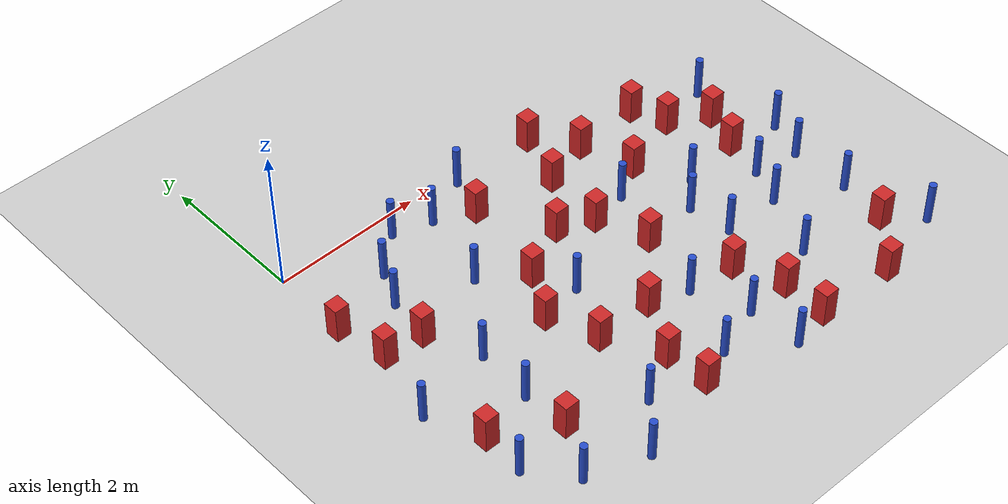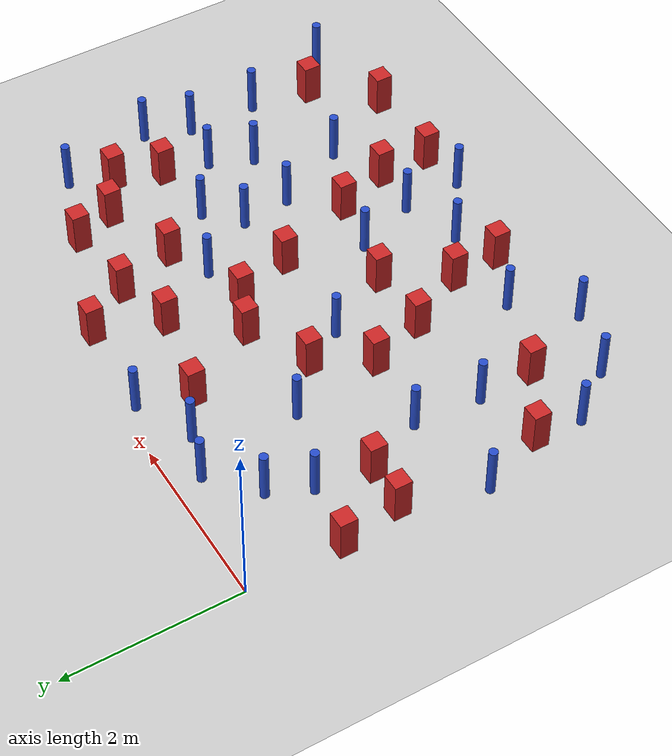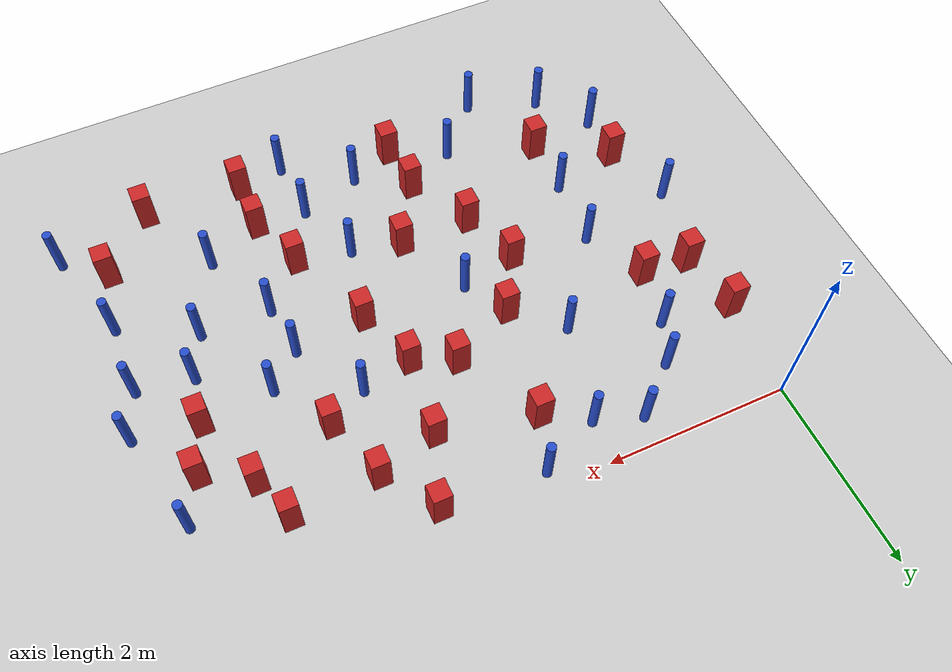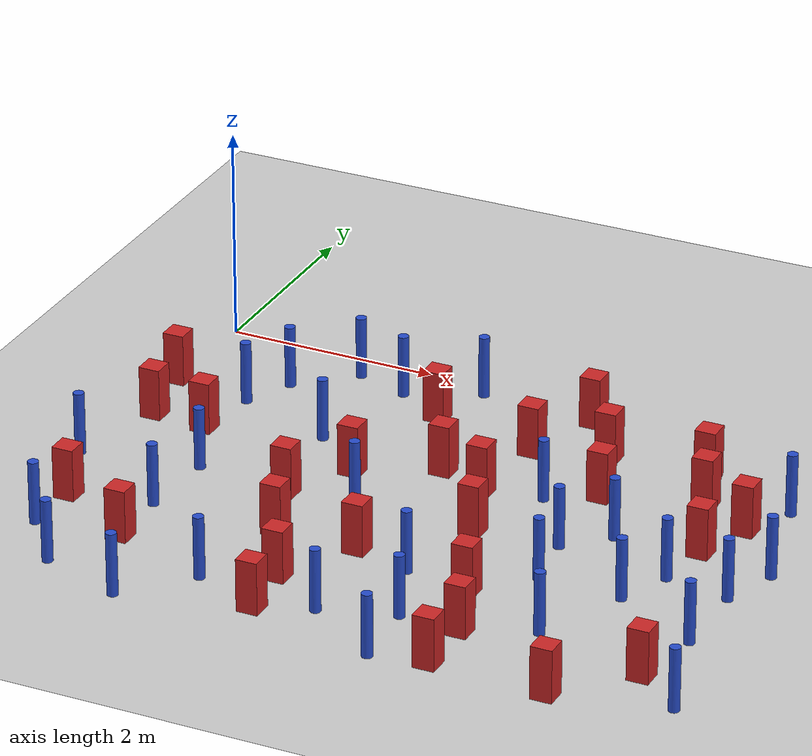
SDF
<sdf version="1.6">
 <world name="default">
  <model name="ground_plane">
   <static>1</static>
   <link name="link">
    <collision name="collision">
     <geometry><plane><normal>0 0 1</normal><size>100 100</size></plane></geometry>
     <surface><friction><ode><mu>100</mu><mu2>50</mu2></ode></friction></surface>
    </collision>
    <visual name="visual">
     <cast_shadows>0</cast_shadows>
     <geometry><plane><normal>0 0 1</normal><size>100 100</size></plane></geometry>
     <material>
      <ambient>1.0 1.0 1.0 1.0</ambient>
      <diffuse>0.8 0.8 0.8 1.0</diffuse>
      <specular>0.01 0.01 0.01 1.000000</specular>
     </material>
    </visual>
   </link>
  </model>
  <model name="square_post_obstacle3">
   <static>true</static>
   <pose>4.00599388592 -3.51829156355 1.91545236811e-07 -7.35059704564e-06 1.12565212e-07 2.39332434364e-05</pose>
   <link name="link">
    <pose>0 0 0.25 0 -0 0</pose>
    <inertial>
     <mass>100</mass>
     <inertia>
      <ixx>0.166667</ixx>
      <ixy>0</ixy>
      <ixz>0</ixz>
      <iyy>0.166667</iyy>
      <iyz>0</iyz>
      <izz>0.166667</izz>
     </inertia>
    </inertial>
    <collision name="collision"><geometry><box><size>.2 .2 .5</size></box></geometry></collision>
    <visual name="visual">
     <geometry><box><size>.2 .2 .5</size></box></geometry>
     <material>
      <script><name>Gazebo/Red</name><uri>file://media/materials/scripts/gazebo.material</uri></script>
     </material>
    </visual>
   </link>
  </model>
  <model name="pole_obstacle7">
   <static>true</static>
   <pose>2.44351836764 -2.47740883795 7.38925637345e-09 -8.47170692798e-08 1.24976764939e-08 -1.74513093025e-07</pose>
   <link name="link">
    <pose>0 0 0.3 0 -0 0</pose>
    <inertial>
     <mass>1</mass>
     <inertia><ixx>0.145833</ixx><ixy>0</ixy><ixz>0</ixz><iyy>0.145833</iyy><iyz>0</iyz><izz>0.125</izz></inertia>
    </inertial>
    <collision name="collision">
     <geometry><cylinder><radius>0.05</radius><length>.6</length></cylinder></geometry>
    </collision>
    <visual name="visual">
     <geometry><cylinder><radius>0.05</radius><length>.6</length></cylinder></geometry>
     <material>
      <script><name>Gazebo/Blue</name><uri>file://media/materials/scripts/gazebo.material</uri></script>
     </material>
    </visual>
   </link>
  </model>
  <model name="pole_obstacle11">
   <static>true</static>
   <pose>0.533257884497 -4.56651260387 7.38925637345e-09 -8.47170692799e-08 1.24976765073e-08 -1.74513093015e-07</pose>
   <link name="link">
    <pose>0 0 0.3 0 -0 0</pose>
    <inertial>
     <mass>1</mass>
     <inertia><ixx>0.145833</ixx><ixy>0</ixy><ixz>0</ixz><iyy>0.145833</iyy><iyz>0</iyz><izz>0.125</izz></inertia>
    </inertial>
    <collision name="collision">
     <geometry><cylinder><radius>0.05</radius><length>.6</length></cylinder></geometry>
    </collision>
    <visual name="visual">
     <geometry><cylinder><radius>0.05</radius><length>.6</length></cylinder></geometry>
     <material>
      <script><name>Gazebo/Blue</name><uri>file://media/materials/scripts/gazebo.material</uri></script>
     </material>
    </visual>
   </link>
  </model>
  <model name="pole_obstacle22">
   <static>true</static>
   <pose>4.85561236583 -3.89319429137 7.38925637345e-09 -8.47170692798e-08 1.24976764937e-08 -1.74513093023e-07</pose>
   <link name="link">
    <pose>0 0 0.3 0 -0 0</pose>
    <inertial>
     <mass>1</mass>
     <inertia><ixx>0.145833</ixx><ixy>0</ixy><ixz>0</ixz><iyy>0.145833</iyy><iyz>0</iyz><izz>0.125</izz></inertia>
    </inertial>
    <collision name="collision">
     <geometry><cylinder><radius>0.05</radius><length>.6</length></cylinder></geometry>
    </collision>
    <visual name="visual">
     <geometry><cylinder><radius>0.05</radius><length>.6</length></cylinder></geometry>
     <material>
      <script><name>Gazebo/Blue</name><uri>file://media/materials/scripts/gazebo.material</uri></script>
     </material>
    </visual>
   </link>
  </model>
  <model name="pole_obstacle23">
   <static>true</static>
   <pose>1.31565596581 -4.84449528913 7.38925637345e-09 -8.47170692799e-08 1.24976765033e-08 -1.74513093018e-07</pose>
   <link name="link">
    <pose>0 0 0.3 0 -0 0</pose>
    <inertial>
     <mass>1</mass>
     <inertia><ixx>0.145833</ixx><ixy>0</ixy><ixz>0</ixz><iyy>0.145833</iyy><iyz>0</iyz><izz>0.125</izz></inertia>
    </inertial>
    <collision name="collision">
     <geometry><cylinder><radius>0.05</radius><length>.6</length></cylinder></geometry>
    </collision>
    <visual name="visual">
     <geometry><cylinder><radius>0.05</radius><length>.6</length></cylinder></geometry>
     <material>
      <script><name>Gazebo/Blue</name><uri>file://media/materials/scripts/gazebo.material</uri></script>
     </material>
    </visual>
   </link>
  </model>
  <model name="square_post_obstacle29">
   <static>true</static>
   <pose>5.73695816343 -1.51770821123 1.91545236811e-07 -7.35059704564e-06 1.12565212e-07 2.39332434364e-05</pose>
   <link name="link">
    <pose>0 0 0.25 0 -0 0</pose>
    <inertial>
     <mass>100</mass>
     <inertia>
      <ixx>0.166667</ixx>
      <ixy>0</ixy>
      <ixz>0</ixz>
      <iyy>0.166667</iyy>
      <iyz>0</iyz>
      <izz>0.166667</izz>
     </inertia>
    </inertial>
    <collision name="collision"><geometry><box><size>.2 .2 .5</size></box></geometry></collision>
    <visual name="visual">
     <geometry><box><size>.2 .2 .5</size></box></geometry>
     <material>
      <script><name>Gazebo/Red</name><uri>file://media/materials/scripts/gazebo.material</uri></script>
     </material>
    </visual>
   </link>
  </model>
  <model name="pole_obstacle35">
   <static>true</static>
   <pose>6.05486879121 -2.6827402552 7.38925637345e-09 -8.47170692798e-08 1.24976764937e-08 -1.74513093023e-07</pose>
   <link name="link">
    <pose>0 0 0.3 0 -0 0</pose>
    <inertial>
     <mass>1</mass>
     <inertia><ixx>0.145833</ixx><ixy>0</ixy><ixz>0</ixz><iyy>0.145833</iyy><iyz>0</iyz><izz>0.125</izz></inertia>
    </inertial>
    <collision name="collision">
     <geometry><cylinder><radius>0.05</radius><length>.6</length></cylinder></geometry>
    </collision>
    <visual name="visual">
     <geometry><cylinder><radius>0.05</radius><length>.6</length></cylinder></geometry>
     <material>
      <script><name>Gazebo/Blue</name><uri>file://media/materials/scripts/gazebo.material</uri></script>
     </material>
    </visual>
   </link>
  </model>
  <model name="pole_obstacle44">
   <static>true</static>
   <pose>4.46348793654 -3.04497540785 7.38925637345e-09 -8.47170692798e-08 1.24976764937e-08 -1.74513093023e-07</pose>
   <link name="link">
    <pose>0 0 0.3 0 -0 0</pose>
    <inertial>
     <mass>1</mass>
     <inertia><ixx>0.145833</ixx><ixy>0</ixy><ixz>0</ixz><iyy>0.145833</iyy><iyz>0</iyz><izz>0.125</izz></inertia>
    </inertial>
    <collision name="collision">
     <geometry><cylinder><radius>0.05</radius><length>.6</length></cylinder></geometry>
    </collision>
    <visual name="visual">
     <geometry><cylinder><radius>0.05</radius><length>.6</length></cylinder></geometry>
     <material>
      <script><name>Gazebo/Blue</name><uri>file://media/materials/scripts/gazebo.material</uri></script>
     </material>
    </visual>
   </link>
  </model>
  <model name="pole_obstacle47">
   <static>true</static>
   <pose>5.23842744811 -3.06139203375 7.38925637345e-09 -8.47170692798e-08 1.24976764937e-08 -1.74513093023e-07</pose>
   <link name="link">
    <pose>0 0 0.3 0 -0 0</pose>
    <inertial>
     <mass>1</mass>
     <inertia><ixx>0.145833</ixx><ixy>0</ixy><ixz>0</ixz><iyy>0.145833</iyy><iyz>0</iyz><izz>0.125</izz></inertia>
    </inertial>
    <collision name="collision">
     <geometry><cylinder><radius>0.05</radius><length>.6</length></cylinder></geometry>
    </collision>
    <visual name="visual">
     <geometry><cylinder><radius>0.05</radius><length>.6</length></cylinder></geometry>
     <material>
      <script><name>Gazebo/Blue</name><uri>file://media/materials/scripts/gazebo.material</uri></script>
     </material>
    </visual>
   </link>
  </model>
  <model name="square_post_obstacle39">
   <static>true</static>
   <pose>5.06121230279 -0.745210494062 1.91545236811e-07 -7.35059704564e-06 1.12565212e-07 2.39332434364e-05</pose>
   <link name="link">
    <pose>0 0 0.25 0 -0 0</pose>
    <inertial>
     <mass>100</mass>
     <inertia>
      <ixx>0.166667</ixx>
      <ixy>0</ixy>
      <ixz>0</ixz>
      <iyy>0.166667</iyy>
      <iyz>0</iyz>
      <izz>0.166667</izz>
     </inertia>
    </inertial>
    <collision name="collision"><geometry><box><size>.2 .2 .5</size></box></geometry></collision>
    <visual name="visual">
     <geometry><box><size>.2 .2 .5</size></box></geometry>
     <material>
      <script><name>Gazebo/Red</name><uri>file://media/materials/scripts/gazebo.material</uri></script>
     </material>
    </visual>
   </link>
  </model>
  <model name="pole_obstacle51">
   <static>true</static>
   <pose>1.44427974664 -0.302717819269 7.38925637345e-09 -8.47170692799e-08 1.24976765065e-08 -1.74513093017e-07</pose>
   <link name="link">
    <pose>0 0 0.3 0 -0 0</pose>
    <inertial>
     <mass>1</mass>
     <inertia><ixx>0.145833</ixx><ixy>0</ixy><ixz>0</ixz><iyy>0.145833</iyy><iyz>0</iyz><izz>0.125</izz></inertia>
    </inertial>
    <collision name="collision">
     <geometry><cylinder><radius>0.05</radius><length>.6</length></cylinder></geometry>
    </collision>
    <visual name="visual">
     <geometry><cylinder><radius>0.05</radius><length>.6</length></cylinder></geometry>
     <material>
      <script><name>Gazebo/Blue</name><uri>file://media/materials/scripts/gazebo.material</uri></script>
     </material>
    </visual>
   </link>
  </model>
  <model name="pole_obstacle53">
   <static>true</static>
   <pose>3.91578654774 -1.73858913442 7.38925637345e-09 -8.471706928e-08 1.24976765152e-08 -1.74513093012e-07</pose>
   <link name="link">
    <pose>0 0 0.3 0 -0 0</pose>
    <inertial>
     <mass>1</mass>
     <inertia><ixx>0.145833</ixx><ixy>0</ixy><ixz>0</ixz><iyy>0.145833</iyy><iyz>0</iyz><izz>0.125</izz></inertia>
    </inertial>
    <collision name="collision">
     <geometry><cylinder><radius>0.05</radius><length>.6</length></cylinder></geometry>
    </collision>
    <visual name="visual">
     <geometry><cylinder><radius>0.05</radius><length>.6</length></cylinder></geometry>
     <material>
      <script><name>Gazebo/Blue</name><uri>file://media/materials/scripts/gazebo.material</uri></script>
     </material>
    </visual>
   </link>
  </model>
  <model name="pole_obstacle55">
   <static>true</static>
   <pose>2.99132134271 -4.35292238982 7.38925637345e-09 -8.47170692798e-08 1.24976765033e-08 -1.74513093019e-07</pose>
   <link name="link">
    <pose>0 0 0.3 0 -0 0</pose>
    <inertial>
     <mass>1</mass>
     <inertia><ixx>0.145833</ixx><ixy>0</ixy><ixz>0</ixz><iyy>0.145833</iyy><iyz>0</iyz><izz>0.125</izz></inertia>
    </inertial>
    <collision name="collision">
     <geometry><cylinder><radius>0.05</radius><length>.6</length></cylinder></geometry>
    </collision>
    <visual name="visual">
     <geometry><cylinder><radius>0.05</radius><length>.6</length></cylinder></geometry>
     <material>
      <script><name>Gazebo/Blue</name><uri>file://media/materials/scripts/gazebo.material</uri></script>
     </material>
    </visual>
   </link>
  </model>
  <model name="square_post_obstacle42">
   <static>true</static>
   <pose>2.44247866948 -3.97164580899 1.91545236811e-07 -7.35059704564e-06 1.12565212e-07 2.39332434364e-05</pose>
   <link name="link">
    <pose>0 0 0.25 0 -0 0</pose>
    <inertial>
     <mass>100</mass>
     <inertia>
      <ixx>0.166667</ixx>
      <ixy>0</ixy>
      <ixz>0</ixz>
      <iyy>0.166667</iyy>
      <iyz>0</iyz>
      <izz>0.166667</izz>
     </inertia>
    </inertial>
    <collision name="collision"><geometry><box><size>.2 .2 .5</size></box></geometry></collision>
    <visual name="visual">
     <geometry><box><size>.2 .2 .5</size></box></geometry>
     <material>
      <script><name>Gazebo/Red</name><uri>file://media/materials/scripts/gazebo.material</uri></script>
     </material>
    </visual>
   </link>
  </model>
  <model name="square_post_obstacle46">
   <static>true</static>
   <pose>2.06076503231 -3.25968005404 1.91545236811e-07 -7.35059704564e-06 1.12565212e-07 2.39332434364e-05</pose>
   <link name="link">
    <pose>0 0 0.25 0 -0 0</pose>
    <inertial>
     <mass>100</mass>
     <inertia>
      <ixx>0.166667</ixx>
      <ixy>0</ixy>
      <ixz>0</ixz>
      <iyy>0.166667</iyy>
      <iyz>0</iyz>
      <izz>0.166667</izz>
     </inertia>
    </inertial>
    <collision name="collision"><geometry><box><size>.2 .2 .5</size></box></geometry></collision>
    <visual name="visual">
     <geometry><box><size>.2 .2 .5</size></box></geometry>
     <material>
      <script><name>Gazebo/Red</name><uri>file://media/materials/scripts/gazebo.material</uri></script>
     </material>
    </visual>
   </link>
  </model>
  <model name="pole_obstacle70">
   <static>true</static>
   <pose>2.61512561731 -0.169626297726 7.38925637345e-09 -8.471706928e-08 1.24976765208e-08 -1.7451309301e-07</pose>
   <link name="link">
    <pose>0 0 0.3 0 -0 0</pose>
    <inertial>
     <mass>1</mass>
     <inertia><ixx>0.145833</ixx><ixy>0</ixy><ixz>0</ixz><iyy>0.145833</iyy><iyz>0</iyz><izz>0.125</izz></inertia>
    </inertial>
    <collision name="collision">
     <geometry><cylinder><radius>0.05</radius><length>.6</length></cylinder></geometry>
    </collision>
    <visual name="visual">
     <geometry><cylinder><radius>0.05</radius><length>.6</length></cylinder></geometry>
     <material>
      <script><name>Gazebo/Blue</name><uri>file://media/materials/scripts/gazebo.material</uri></script>
     </material>
    </visual>
   </link>
  </model>
  <model name="square_post_obstacle65">
   <static>true</static>
   <pose>4.12832801389 -0.794457500878 1.91545236811e-07 -7.35059704564e-06 1.12565212e-07 2.39332434364e-05</pose>
   <link name="link">
    <pose>0 0 0.25 0 -0 0</pose>
    <inertial>
     <mass>100</mass>
     <inertia>
      <ixx>0.166667</ixx>
      <ixy>0</ixy>
      <ixz>0</ixz>
      <iyy>0.166667</iyy>
      <iyz>0</iyz>
      <izz>0.166667</izz>
     </inertia>
    </inertial>
    <collision name="collision"><geometry><box><size>.2 .2 .5</size></box></geometry></collision>
    <visual name="visual">
     <geometry><box><size>.2 .2 .5</size></box></geometry>
     <material>
      <script><name>Gazebo/Red</name><uri>file://media/materials/scripts/gazebo.material</uri></script>
     </material>
    </visual>
   </link>
  </model>
  <model name="square_post_obstacle67">
   <static>true</static>
   <pose>-0.0289529675434 -1.08019975364 1.91545236811e-07 -7.35059704564e-06 1.12565212e-07 2.39332434364e-05</pose>
   <link name="link">
    <pose>0 0 0.25 0 -0 0</pose>
    <inertial>
     <mass>100</mass>
     <inertia>
      <ixx>0.166667</ixx>
      <ixy>0</ixy>
      <ixz>0</ixz>
      <iyy>0.166667</iyy>
      <iyz>0</iyz>
      <izz>0.166667</izz>
     </inertia>
    </inertial>
    <collision name="collision"><geometry><box><size>.2 .2 .5</size></box></geometry></collision>
    <visual name="visual">
     <geometry><box><size>.2 .2 .5</size></box></geometry>
     <material>
      <script><name>Gazebo/Red</name><uri>file://media/materials/scripts/gazebo.material</uri></script>
     </material>
    </visual>
   </link>
  </model>
  <model name="square_post_obstacle68">
   <static>true</static>
   <pose>2.84794088507 -3.26135374026 1.91545236811e-07 -7.35059704564e-06 1.12565212e-07 2.39332434364e-05</pose>
   <link name="link">
    <pose>0 0 0.25 0 -0 0</pose>
    <inertial>
     <mass>100</mass>
     <inertia>
      <ixx>0.166667</ixx>
      <ixy>0</ixy>
      <ixz>0</ixz>
      <iyy>0.166667</iyy>
      <iyz>0</iyz>
      <izz>0.166667</izz>
     </inertia>
    </inertial>
    <collision name="collision"><geometry><box><size>.2 .2 .5</size></box></geometry></collision>
    <visual name="visual">
     <geometry><box><size>.2 .2 .5</size></box></geometry>
     <material>
      <script><name>Gazebo/Red</name><uri>file://media/materials/scripts/gazebo.material</uri></script>
     </material>
    </visual>
   </link>
  </model>
  <model name="pole_obstacle80">
   <static>true</static>
   <pose>1.94999545837 -0.470431281667 7.38925637345e-09 -8.47170692799e-08 1.24976765044e-08 -1.74513093018e-07</pose>
   <link name="link">
    <pose>0 0 0.3 0 -0 0</pose>
    <inertial>
     <mass>1</mass>
     <inertia><ixx>0.145833</ixx><ixy>0</ixy><ixz>0</ixz><iyy>0.145833</iyy><iyz>0</iyz><izz>0.125</izz></inertia>
    </inertial>
    <collision name="collision">
     <geometry><cylinder><radius>0.05</radius><length>.6</length></cylinder></geometry>
    </collision>
    <visual name="visual">
     <geometry><cylinder><radius>0.05</radius><length>.6</length></cylinder></geometry>
     <material>
      <script><name>Gazebo/Blue</name><uri>file://media/materials/scripts/gazebo.material</uri></script>
     </material>
    </visual>
   </link>
  </model>
  <model name="square_post_obstacle69">
   <static>true</static>
   <pose>0.0938976587752 -1.7775641572 1.91545236811e-07 -7.35059704564e-06 1.12565212e-07 2.39332434364e-05</pose>
   <link name="link">
    <pose>0 0 0.25 0 -0 0</pose>
    <inertial>
     <mass>100</mass>
     <inertia>
      <ixx>0.166667</ixx>
      <ixy>0</ixy>
      <ixz>0</ixz>
      <iyy>0.166667</iyy>
      <iyz>0</iyz>
      <izz>0.166667</izz>
     </inertia>
    </inertial>
    <collision name="collision"><geometry><box><size>.2 .2 .5</size></box></geometry></collision>
    <visual name="visual">
     <geometry><box><size>.2 .2 .5</size></box></geometry>
     <material>
      <script><name>Gazebo/Red</name><uri>file://media/materials/scripts/gazebo.material</uri></script>
     </material>
    </visual>
   </link>
  </model>
  <model name="square_post_obstacle70">
   <static>true</static>
   <pose>3.3650989649 -1.84867344312 1.91545236811e-07 -7.35059704564e-06 1.12565212e-07 2.39332434364e-05</pose>
   <link name="link">
    <pose>0 0 0.25 0 -0 0</pose>
    <inertial>
     <mass>100</mass>
     <inertia>
      <ixx>0.166667</ixx>
      <ixy>0</ixy>
      <ixz>0</ixz>
      <iyy>0.166667</iyy>
      <iyz>0</iyz>
      <izz>0.166667</izz>
     </inertia>
    </inertial>
    <collision name="collision"><geometry><box><size>.2 .2 .5</size></box></geometry></collision>
    <visual name="visual">
     <geometry><box><size>.2 .2 .5</size></box></geometry>
     <material>
      <script><name>Gazebo/Red</name><uri>file://media/materials/scripts/gazebo.material</uri></script>
     </material>
    </visual>
   </link>
  </model>
  <model name="pole_obstacle82">
   <static>true</static>
   <pose>0.876127477094 -3.28093531462 7.38925637345e-09 -8.47170692799e-08 1.2497676509e-08 -1.74513093016e-07</pose>
   <link name="link">
    <pose>0 0 0.3 0 -0 0</pose>
    <inertial>
     <mass>1</mass>
     <inertia><ixx>0.145833</ixx><ixy>0</ixy><ixz>0</ixz><iyy>0.145833</iyy><iyz>0</iyz><izz>0.125</izz></inertia>
    </inertial>
    <collision name="collision">
     <geometry><cylinder><radius>0.05</radius><length>.6</length></cylinder></geometry>
    </collision>
    <visual name="visual">
     <geometry><cylinder><radius>0.05</radius><length>.6</length></cylinder></geometry>
     <material>
      <script><name>Gazebo/Blue</name><uri>file://media/materials/scripts/gazebo.material</uri></script>
     </material>
    </visual>
   </link>
  </model>
  <model name="pole_obstacle85">
   <static>true</static>
   <pose>0.725029253224 -1.20004533083 7.38925637345e-09 -8.47170692799e-08 1.24976765033e-08 -1.7451309302e-07</pose>
   <link name="link">
    <pose>0 0 0.3 0 -0 0</pose>
    <inertial>
     <mass>1</mass>
     <inertia><ixx>0.145833</ixx><ixy>0</ixy><ixz>0</ixz><iyy>0.145833</iyy><iyz>0</iyz><izz>0.125</izz></inertia>
    </inertial>
    <collision name="collision">
     <geometry><cylinder><radius>0.05</radius><length>.6</length></cylinder></geometry>
    </collision>
    <visual name="visual">
     <geometry><cylinder><radius>0.05</radius><length>.6</length></cylinder></geometry>
     <material>
      <script><name>Gazebo/Blue</name><uri>file://media/materials/scripts/gazebo.material</uri></script>
     </material>
    </visual>
   </link>
  </model>
  <model name="pole_obstacle87">
   <static>true</static>
   <pose>4.75795117632 -2.11434063005 7.38925637345e-09 -8.47170692798e-08 1.24976764937e-08 -1.74513093023e-07</pose>
   <link name="link">
    <pose>0 0 0.3 0 -0 0</pose>
    <inertial>
     <mass>1</mass>
     <inertia><ixx>0.145833</ixx><ixy>0</ixy><ixz>0</ixz><iyy>0.145833</iyy><iyz>0</iyz><izz>0.125</izz></inertia>
    </inertial>
    <collision name="collision">
     <geometry><cylinder><radius>0.05</radius><length>.6</length></cylinder></geometry>
    </collision>
    <visual name="visual">
     <geometry><cylinder><radius>0.05</radius><length>.6</length></cylinder></geometry>
     <material>
      <script><name>Gazebo/Blue</name><uri>file://media/materials/scripts/gazebo.material</uri></script>
     </material>
    </visual>
   </link>
  </model>
  <model name="pole_obstacle89">
   <static>true</static>
   <pose>1.66759979632 -1.54506632148 7.38925637345e-09 -8.471706928e-08 1.24976765079e-08 -1.74513093017e-07</pose>
   <link name="link">
    <pose>0 0 0.3 0 -0 0</pose>
    <inertial>
     <mass>1</mass>
     <inertia><ixx>0.145833</ixx><ixy>0</ixy><ixz>0</ixz><iyy>0.145833</iyy><iyz>0</iyz><izz>0.125</izz></inertia>
    </inertial>
    <collision name="collision">
     <geometry><cylinder><radius>0.05</radius><length>.6</length></cylinder></geometry>
    </collision>
    <visual name="visual">
     <geometry><cylinder><radius>0.05</radius><length>.6</length></cylinder></geometry>
     <material>
      <script><name>Gazebo/Blue</name><uri>file://media/materials/scripts/gazebo.material</uri></script>
     </material>
    </visual>
   </link>
  </model>
  <model name="pole_obstacle94">
   <static>true</static>
   <pose>-0.160150394242 -2.71162221499 7.38925637345e-09 -8.47170692792e-08 1.24976764377e-08 -1.74513093042e-07</pose>
   <link name="link">
    <pose>0 0 0.3 0 -0 0</pose>
    <inertial>
     <mass>1</mass>
     <inertia><ixx>0.145833</ixx><ixy>0</ixy><ixz>0</ixz><iyy>0.145833</iyy><iyz>0</iyz><izz>0.125</izz></inertia>
    </inertial>
    <collision name="collision">
     <geometry><cylinder><radius>0.05</radius><length>.6</length></cylinder></geometry>
    </collision>
    <visual name="visual">
     <geometry><cylinder><radius>0.05</radius><length>.6</length></cylinder></geometry>
     <material>
      <script><name>Gazebo/Blue</name><uri>file://media/materials/scripts/gazebo.material</uri></script>
     </material>
    </visual>
   </link>
  </model>
  <model name="square_post_obstacle94">
   <static>true</static>
   <pose>4.23458515603 -4.75592010998 1.91545236811e-07 -7.35059704564e-06 1.12565212e-07 2.39332434364e-05</pose>
   <link name="link">
    <pose>0 0 0.25 0 -0 0</pose>
    <inertial>
     <mass>100</mass>
     <inertia>
      <ixx>0.166667</ixx>
      <ixy>0</ixy>
      <ixz>0</ixz>
      <iyy>0.166667</iyy>
      <iyz>0</iyz>
      <izz>0.166667</izz>
     </inertia>
    </inertial>
    <collision name="collision"><geometry><box><size>.2 .2 .5</size></box></geometry></collision>
    <visual name="visual">
     <geometry><box><size>.2 .2 .5</size></box></geometry>
     <material>
      <script><name>Gazebo/Red</name><uri>file://media/materials/scripts/gazebo.material</uri></script>
     </material>
    </visual>
   </link>
  </model>
  <model name="square_post_obstacle96">
   <static>true</static>
   <pose>0.619751280939 -1.82297365712 1.91545236811e-07 -7.35059704564e-06 1.12565212e-07 2.39332434364e-05</pose>
   <link name="link">
    <pose>0 0 0.25 0 -0 0</pose>
    <inertial>
     <mass>100</mass>
     <inertia>
      <ixx>0.166667</ixx>
      <ixy>0</ixy>
      <ixz>0</ixz>
      <iyy>0.166667</iyy>
      <iyz>0</iyz>
      <izz>0.166667</izz>
     </inertia>
    </inertial>
    <collision name="collision"><geometry><box><size>.2 .2 .5</size></box></geometry></collision>
    <visual name="visual">
     <geometry><box><size>.2 .2 .5</size></box></geometry>
     <material>
      <script><name>Gazebo/Red</name><uri>file://media/materials/scripts/gazebo.material</uri></script>
     </material>
    </visual>
   </link>
  </model>
  <model name="pole_obstacle110">
   <static>true</static>
   <pose>0.103716579273 -4.01333294461 7.38925637345e-09 -8.471706928e-08 1.24976765082e-08 -1.74513093017e-07</pose>
   <link name="link">
    <pose>0 0 0.3 0 -0 0</pose>
    <inertial>
     <mass>1</mass>
     <inertia><ixx>0.145833</ixx><ixy>0</ixy><ixz>0</ixz><iyy>0.145833</iyy><iyz>0</iyz><izz>0.125</izz></inertia>
    </inertial>
    <collision name="collision">
     <geometry><cylinder><radius>0.05</radius><length>.6</length></cylinder></geometry>
    </collision>
    <visual name="visual">
     <geometry><cylinder><radius>0.05</radius><length>.6</length></cylinder></geometry>
     <material>
      <script><name>Gazebo/Blue</name><uri>file://media/materials/scripts/gazebo.material</uri></script>
     </material>
    </visual>
   </link>
  </model>
  <model name="pole_obstacle120">
   <static>true</static>
   <pose>5.97224075246 -1.05763922725 7.38925637345e-09 -8.471706928e-08 1.24976765134e-08 -1.74513093015e-07</pose>
   <link name="link">
    <pose>0 0 0.3 0 -0 0</pose>
    <inertial>
     <mass>1</mass>
     <inertia><ixx>0.145833</ixx><ixy>0</ixy><ixz>0</ixz><iyy>0.145833</iyy><iyz>0</iyz><izz>0.125</izz></inertia>
    </inertial>
    <collision name="collision">
     <geometry><cylinder><radius>0.05</radius><length>.6</length></cylinder></geometry>
    </collision>
    <visual name="visual">
     <geometry><cylinder><radius>0.05</radius><length>.6</length></cylinder></geometry>
     <material>
      <script><name>Gazebo/Blue</name><uri>file://media/materials/scripts/gazebo.material</uri></script>
     </material>
    </visual>
   </link>
  </model>
  <model name="square_post_obstacle125">
   <static>true</static>
   <pose>2.42046167539 -0.743113017028 1.91545236811e-07 -7.35059704564e-06 1.12565212e-07 2.39332434364e-05</pose>
   <link name="link">
    <pose>0 0 0.25 0 -0 0</pose>
    <inertial>
     <mass>100</mass>
     <inertia>
      <ixx>0.166667</ixx>
      <ixy>0</ixy>
      <ixz>0</ixz>
      <iyy>0.166667</iyy>
      <iyz>0</iyz>
      <izz>0.166667</izz>
     </inertia>
    </inertial>
    <collision name="collision"><geometry><box><size>.2 .2 .5</size></box></geometry></collision>
    <visual name="visual">
     <geometry><box><size>.2 .2 .5</size></box></geometry>
     <material>
      <script><name>Gazebo/Red</name><uri>file://media/materials/scripts/gazebo.material</uri></script>
     </material>
    </visual>
   </link>
  </model>
  <model name="square_post_obstacle128">
   <static>true</static>
   <pose>1.82935872686 -2.59796208963 1.91545236811e-07 -7.35059704564e-06 1.12565212e-07 2.39332434364e-05</pose>
   <link name="link">
    <pose>0 0 0.25 0 -0 0</pose>
    <inertial>
     <mass>100</mass>
     <inertia>
      <ixx>0.166667</ixx>
      <ixy>0</ixy>
      <ixz>0</ixz>
      <iyy>0.166667</iyy>
      <iyz>0</iyz>
      <izz>0.166667</izz>
     </inertia>
    </inertial>
    <collision name="collision"><geometry><box><size>.2 .2 .5</size></box></geometry></collision>
    <visual name="visual">
     <geometry><box><size>.2 .2 .5</size></box></geometry>
     <material>
      <script><name>Gazebo/Red</name><uri>file://media/materials/scripts/gazebo.material</uri></script>
     </material>
    </visual>
   </link>
  </model>
  <model name="square_post_obstacle130">
   <static>true</static>
   <pose>4.24127412293 -4.15732295035 1.91545236811e-07 -7.35059704564e-06 1.12565212e-07 2.39332434364e-05</pose>
   <link name="link">
    <pose>0 0 0.25 0 -0 0</pose>
    <inertial>
     <mass>100</mass>
     <inertia>
      <ixx>0.166667</ixx>
      <ixy>0</ixy>
      <ixz>0</ixz>
      <iyy>0.166667</iyy>
      <iyz>0</iyz>
      <izz>0.166667</izz>
     </inertia>
    </inertial>
    <collision name="collision"><geometry><box><size>.2 .2 .5</size></box></geometry></collision>
    <visual name="visual">
     <geometry><box><size>.2 .2 .5</size></box></geometry>
     <material>
      <script><name>Gazebo/Red</name><uri>file://media/materials/scripts/gazebo.material</uri></script>
     </material>
    </visual>
   </link>
  </model>
  <model name="pole_obstacle133">
   <static>true</static>
   <pose>6.04828328993 -3.49419927393 7.38925637345e-09 -8.47170692798e-08 1.24976764937e-08 -1.74513093023e-07</pose>
   <link name="link">
    <pose>0 0 0.3 0 -0 0</pose>
    <inertial>
     <mass>1</mass>
     <inertia><ixx>0.145833</ixx><ixy>0</ixy><ixz>0</ixz><iyy>0.145833</iyy><iyz>0</iyz><izz>0.125</izz></inertia>
    </inertial>
    <collision name="collision">
     <geometry><cylinder><radius>0.05</radius><length>.6</length></cylinder></geometry>
    </collision>
    <visual name="visual">
     <geometry><cylinder><radius>0.05</radius><length>.6</length></cylinder></geometry>
     <material>
      <script><name>Gazebo/Blue</name><uri>file://media/materials/scripts/gazebo.material</uri></script>
     </material>
    </visual>
   </link>
  </model>
  <model name="pole_obstacle134">
   <static>true</static>
   <pose>1.84756739505 -4.27157341599 7.38925637345e-09 -8.47170692799e-08 1.24976765033e-08 -1.74513093018e-07</pose>
   <link name="link">
    <pose>0 0 0.3 0 -0 0</pose>
    <inertial>
     <mass>1</mass>
     <inertia><ixx>0.145833</ixx><ixy>0</ixy><ixz>0</ixz><iyy>0.145833</iyy><iyz>0</iyz><izz>0.125</izz></inertia>
    </inertial>
    <collision name="collision">
     <geometry><cylinder><radius>0.05</radius><length>.6</length></cylinder></geometry>
    </collision>
    <visual name="visual">
     <geometry><cylinder><radius>0.05</radius><length>.6</length></cylinder></geometry>
     <material>
      <script><name>Gazebo/Blue</name><uri>file://media/materials/scripts/gazebo.material</uri></script>
     </material>
    </visual>
   </link>
  </model>
  <model name="square_post_obstacle143">
   <static>true</static>
   <pose>5.32343478043 -4.80483782721 1.91545236811e-07 -7.35059704564e-06 1.12565212e-07 2.39332434364e-05</pose>
   <link name="link">
    <pose>0 0 0.25 0 -0 0</pose>
    <inertial>
     <mass>100</mass>
     <inertia>
      <ixx>0.166667</ixx>
      <ixy>0</ixy>
      <ixz>0</ixz>
      <iyy>0.166667</iyy>
      <iyz>0</iyz>
      <izz>0.166667</izz>
     </inertia>
    </inertial>
    <collision name="collision"><geometry><box><size>.2 .2 .5</size></box></geometry></collision>
    <visual name="visual">
     <geometry><box><size>.2 .2 .5</size></box></geometry>
     <material>
      <script><name>Gazebo/Red</name><uri>file://media/materials/scripts/gazebo.material</uri></script>
     </material>
    </visual>
   </link>
  </model>
  <model name="square_post_obstacle147">
   <static>true</static>
   <pose>3.46332336645 -0.981634640758 1.91545236811e-07 -7.35059704564e-06 1.12565212e-07 2.39332434364e-05</pose>
   <link name="link">
    <pose>0 0 0.25 0 -0 0</pose>
    <inertial>
     <mass>100</mass>
     <inertia>
      <ixx>0.166667</ixx>
      <ixy>0</ixy>
      <ixz>0</ixz>
      <iyy>0.166667</iyy>
      <iyz>0</iyz>
      <izz>0.166667</izz>
     </inertia>
    </inertial>
    <collision name="collision"><geometry><box><size>.2 .2 .5</size></box></geometry></collision>
    <visual name="visual">
     <geometry><box><size>.2 .2 .5</size></box></geometry>
     <material>
      <script><name>Gazebo/Red</name><uri>file://media/materials/scripts/gazebo.material</uri></script>
     </material>
    </visual>
   </link>
  </model>
  <model name="square_post_obstacle152">
   <static>true</static>
   <pose>5.23527161902 -1.21942527809 1.91545236811e-07 -7.35059704564e-06 1.12565212e-07 2.39332434364e-05</pose>
   <link name="link">
    <pose>0 0 0.25 0 -0 0</pose>
    <inertial>
     <mass>100</mass>
     <inertia>
      <ixx>0.166667</ixx>
      <ixy>0</ixy>
      <ixz>0</ixz>
      <iyy>0.166667</iyy>
      <iyz>0</iyz>
      <izz>0.166667</izz>
     </inertia>
    </inertial>
    <collision name="collision"><geometry><box><size>.2 .2 .5</size></box></geometry></collision>
    <visual name="visual">
     <geometry><box><size>.2 .2 .5</size></box></geometry>
     <material>
      <script><name>Gazebo/Red</name><uri>file://media/materials/scripts/gazebo.material</uri></script>
     </material>
    </visual>
   </link>
  </model>
  <model name="pole_obstacle157">
   <static>true</static>
   <pose>3.71724900948 -4.84696282365 7.38925637345e-09 -8.47170692798e-08 1.24976765033e-08 -1.74513093019e-07</pose>
   <link name="link">
    <pose>0 0 0.3 0 -0 0</pose>
    <inertial>
     <mass>1</mass>
     <inertia><ixx>0.145833</ixx><ixy>0</ixy><ixz>0</ixz><iyy>0.145833</iyy><iyz>0</iyz><izz>0.125</izz></inertia>
    </inertial>
    <collision name="collision">
     <geometry><cylinder><radius>0.05</radius><length>.6</length></cylinder></geometry>
    </collision>
    <visual name="visual">
     <geometry><cylinder><radius>0.05</radius><length>.6</length></cylinder></geometry>
     <material>
      <script><name>Gazebo/Blue</name><uri>file://media/materials/scripts/gazebo.material</uri></script>
     </material>
    </visual>
   </link>
  </model>
  <model name="pole_obstacle163">
   <static>true</static>
   <pose>3.67319600759 -4.13760938251 7.38925637345e-09 -8.47170692798e-08 1.24976765033e-08 -1.74513093019e-07</pose>
   <link name="link">
    <pose>0 0 0.3 0 -0 0</pose>
    <inertial>
     <mass>1</mass>
     <inertia><ixx>0.145833</ixx><ixy>0</ixy><ixz>0</ixz><iyy>0.145833</iyy><iyz>0</iyz><izz>0.125</izz></inertia>
    </inertial>
    <collision name="collision">
     <geometry><cylinder><radius>0.05</radius><length>.6</length></cylinder></geometry>
    </collision>
    <visual name="visual">
     <geometry><cylinder><radius>0.05</radius><length>.6</length></cylinder></geometry>
     <material>
      <script><name>Gazebo/Blue</name><uri>file://media/materials/scripts/gazebo.material</uri></script>
     </material>
    </visual>
   </link>
  </model>
  <model name="pole_obstacle164">
   <static>true</static>
   <pose>0.940165816419 -0.7437776914 7.38925637345e-09 -8.47170692799e-08 1.24976765008e-08 -1.7451309302e-07</pose>
   <link name="link">
    <pose>0 0 0.3 0 -0 0</pose>
    <inertial>
     <mass>1</mass>
     <inertia><ixx>0.145833</ixx><ixy>0</ixy><ixz>0</ixz><iyy>0.145833</iyy><iyz>0</iyz><izz>0.125</izz></inertia>
    </inertial>
    <collision name="collision">
     <geometry><cylinder><radius>0.05</radius><length>.6</length></cylinder></geometry>
    </collision>
    <visual name="visual">
     <geometry><cylinder><radius>0.05</radius><length>.6</length></cylinder></geometry>
     <material>
      <script><name>Gazebo/Blue</name><uri>file://media/materials/scripts/gazebo.material</uri></script>
     </material>
    </visual>
   </link>
  </model>
  <model name="square_post_obstacle161">
   <static>true</static>
   <pose>3.60274676277 -2.53036139323 1.91545236811e-07 -7.35059704564e-06 1.12565212e-07 2.39332434364e-05</pose>
   <link name="link">
    <pose>0 0 0.25 0 -0 0</pose>
    <inertial>
     <mass>100</mass>
     <inertia>
      <ixx>0.166667</ixx>
      <ixy>0</ixy>
      <ixz>0</ixz>
      <iyy>0.166667</iyy>
      <iyz>0</iyz>
      <izz>0.166667</izz>
     </inertia>
    </inertial>
    <collision name="collision"><geometry><box><size>.2 .2 .5</size></box></geometry></collision>
    <visual name="visual">
     <geometry><box><size>.2 .2 .5</size></box></geometry>
     <material>
      <script><name>Gazebo/Red</name><uri>file://media/materials/scripts/gazebo.material</uri></script>
     </material>
    </visual>
   </link>
  </model>
  <model name="pole_obstacle169">
   <static>true</static>
   <pose>6.36457108659 -4.55844032263 7.38925637345e-09 -8.47170692796e-08 1.24976764786e-08 -1.74513093032e-07</pose>
   <link name="link">
    <pose>0 0 0.3 0 -0 0</pose>
    <inertial>
     <mass>1</mass>
     <inertia><ixx>0.145833</ixx><ixy>0</ixy><ixz>0</ixz><iyy>0.145833</iyy><iyz>0</iyz><izz>0.125</izz></inertia>
    </inertial>
    <collision name="collision">
     <geometry><cylinder><radius>0.05</radius><length>.6</length></cylinder></geometry>
    </collision>
    <visual name="visual">
     <geometry><cylinder><radius>0.05</radius><length>.6</length></cylinder></geometry>
     <material>
      <script><name>Gazebo/Blue</name><uri>file://media/materials/scripts/gazebo.material</uri></script>
     </material>
    </visual>
   </link>
  </model>
  <model name="square_post_obstacle169">
   <static>true</static>
   <pose>3.73546566326 -0.243188171383 1.91545236811e-07 -7.35059704564e-06 1.12565212e-07 2.39332434364e-05</pose>
   <link name="link">
    <pose>0 0 0.25 0 -0 0</pose>
    <inertial>
     <mass>100</mass>
     <inertia>
      <ixx>0.166667</ixx>
      <ixy>0</ixy>
      <ixz>0</ixz>
      <iyy>0.166667</iyy>
      <iyz>0</iyz>
      <izz>0.166667</izz>
     </inertia>
    </inertial>
    <collision name="collision"><geometry><box><size>.2 .2 .5</size></box></geometry></collision>
    <visual name="visual">
     <geometry><box><size>.2 .2 .5</size></box></geometry>
     <material>
      <script><name>Gazebo/Red</name><uri>file://media/materials/scripts/gazebo.material</uri></script>
     </material>
    </visual>
   </link>
  </model>
  <model name="square_post_obstacle171">
   <static>true</static>
   <pose>2.49052798905 -4.55020485268 1.91545236811e-07 -7.35059704564e-06 1.12565212e-07 2.39332434364e-05</pose>
   <link name="link">
    <pose>0 0 0.25 0 -0 0</pose>
    <inertial>
     <mass>100</mass>
     <inertia>
      <ixx>0.166667</ixx>
      <ixy>0</ixy>
      <ixz>0</ixz>
      <iyy>0.166667</iyy>
      <iyz>0</iyz>
      <izz>0.166667</izz>
     </inertia>
    </inertial>
    <collision name="collision"><geometry><box><size>.2 .2 .5</size></box></geometry></collision>
    <visual name="visual">
     <geometry><box><size>.2 .2 .5</size></box></geometry>
     <material>
      <script><name>Gazebo/Red</name><uri>file://media/materials/scripts/gazebo.material</uri></script>
     </material>
    </visual>
   </link>
  </model>
  <model name="pole_obstacle171">
   <static>true</static>
   <pose>5.44652371918 -2.57839066101 7.38925637345e-09 -8.47170692798e-08 1.24976764937e-08 -1.74513093023e-07</pose>
   <link name="link">
    <pose>0 0 0.3 0 -0 0</pose>
    <inertial>
     <mass>1</mass>
     <inertia><ixx>0.145833</ixx><ixy>0</ixy><ixz>0</ixz><iyy>0.145833</iyy><iyz>0</iyz><izz>0.125</izz></inertia>
    </inertial>
    <collision name="collision">
     <geometry><cylinder><radius>0.05</radius><length>.6</length></cylinder></geometry>
    </collision>
    <visual name="visual">
     <geometry><cylinder><radius>0.05</radius><length>.6</length></cylinder></geometry>
     <material>
      <script><name>Gazebo/Blue</name><uri>file://media/materials/scripts/gazebo.material</uri></script>
     </material>
    </visual>
   </link>
  </model>
  <model name="pole_obstacle178">
   <static>true</static>
   <pose>3.39564321255 -3.41494010249 7.38925637345e-09 -8.47170692798e-08 1.24976764939e-08 -1.74513093025e-07</pose>
   <link name="link">
    <pose>0 0 0.3 0 -0 0</pose>
    <inertial>
     <mass>1</mass>
     <inertia><ixx>0.145833</ixx><ixy>0</ixy><ixz>0</ixz><iyy>0.145833</iyy><iyz>0</iyz><izz>0.125</izz></inertia>
    </inertial>
    <collision name="collision">
     <geometry><cylinder><radius>0.05</radius><length>.6</length></cylinder></geometry>
    </collision>
    <visual name="visual">
     <geometry><cylinder><radius>0.05</radius><length>.6</length></cylinder></geometry>
     <material>
      <script><name>Gazebo/Blue</name><uri>file://media/materials/scripts/gazebo.material</uri></script>
     </material>
    </visual>
   </link>
  </model>
  <model name="square_post_obstacle181">
   <static>true</static>
   <pose>0.895132631628 -3.91885023995 1.91545236811e-07 -7.35059704564e-06 1.12565212e-07 2.39332434364e-05</pose>
   <link name="link">
    <pose>0 0 0.25 0 -0 0</pose>
    <inertial>
     <mass>100</mass>
     <inertia>
      <ixx>0.166667</ixx>
      <ixy>0</ixy>
      <ixz>0</ixz>
      <iyy>0.166667</iyy>
      <iyz>0</iyz>
      <izz>0.166667</izz>
     </inertia>
    </inertial>
    <collision name="collision"><geometry><box><size>.2 .2 .5</size></box></geometry></collision>
    <visual name="visual">
     <geometry><box><size>.2 .2 .5</size></box></geometry>
     <material>
      <script><name>Gazebo/Red</name><uri>file://media/materials/scripts/gazebo.material</uri></script>
     </material>
    </visual>
   </link>
  </model>
  <model name="square_post_obstacle189">
   <static>true</static>
   <pose>0.129101302014 -3.45223396361 1.91545236811e-07 -7.35059704564e-06 1.12565212e-07 2.39332434364e-05</pose>
   <link name="link">
    <pose>0 0 0.25 0 -0 0</pose>
    <inertial>
     <mass>100</mass>
     <inertia>
      <ixx>0.166667</ixx>
      <ixy>0</ixy>
      <ixz>0</ixz>
      <iyy>0.166667</iyy>
      <iyz>0</iyz>
      <izz>0.166667</izz>
     </inertia>
    </inertial>
    <collision name="collision"><geometry><box><size>.2 .2 .5</size></box></geometry></collision>
    <visual name="visual">
     <geometry><box><size>.2 .2 .5</size></box></geometry>
     <material>
      <script><name>Gazebo/Red</name><uri>file://media/materials/scripts/gazebo.material</uri></script>
     </material>
    </visual>
   </link>
  </model>
  <model name="square_post_obstacle200">
   <static>true</static>
   <pose>4.35912795938 -1.4932125265 1.91545236811e-07 -7.35059704564e-06 1.12565212e-07 2.39332434364e-05</pose>
   <link name="link">
    <pose>0 0 0.25 0 -0 0</pose>
    <inertial>
     <mass>100</mass>
     <inertia>
      <ixx>0.166667</ixx>
      <ixy>0</ixy>
      <ixz>0</ixz>
      <iyy>0.166667</iyy>
      <iyz>0</iyz>
      <izz>0.166667</izz>
     </inertia>
    </inertial>
    <collision name="collision"><geometry><box><size>.2 .2 .5</size></box></geometry></collision>
    <visual name="visual">
     <geometry><box><size>.2 .2 .5</size></box></geometry>
     <material>
      <script><name>Gazebo/Red</name><uri>file://media/materials/scripts/gazebo.material</uri></script>
     </material>
    </visual>
   </link>
  </model>
  <model name="square_post_obstacle205">
   <static>true</static>
   <pose>5.91436526409 -4.18384063777 1.91545236811e-07 -7.35059704564e-06 1.12565212e-07 2.39332434364e-05</pose>
   <link name="link">
    <pose>0 0 0.25 0 -0 0</pose>
    <inertial>
     <mass>100</mass>
     <inertia>
      <ixx>0.166667</ixx>
      <ixy>0</ixy>
      <ixz>0</ixz>
      <iyy>0.166667</iyy>
      <iyz>0</iyz>
      <izz>0.166667</izz>
     </inertia>
    </inertial>
    <collision name="collision"><geometry><box><size>.2 .2 .5</size></box></geometry></collision>
    <visual name="visual">
     <geometry><box><size>.2 .2 .5</size></box></geometry>
     <material>
      <script><name>Gazebo/Red</name><uri>file://media/materials/scripts/gazebo.material</uri></script>
     </material>
    </visual>
   </link>
  </model>
  <model name="pole_obstacle193">
   <static>true</static>
   <pose>0.931338203002 -2.50615516431 7.38925637345e-09 -8.47170692799e-08 1.2497676509e-08 -1.74513093016e-07</pose>
   <link name="link">
    <pose>0 0 0.3 0 -0 0</pose>
    <inertial>
     <mass>1</mass>
     <inertia><ixx>0.145833</ixx><ixy>0</ixy><ixz>0</ixz><iyy>0.145833</iyy><iyz>0</iyz><izz>0.125</izz></inertia>
    </inertial>
    <collision name="collision">
     <geometry><cylinder><radius>0.05</radius><length>.6</length></cylinder></geometry>
    </collision>
    <visual name="visual">
     <geometry><cylinder><radius>0.05</radius><length>.6</length></cylinder></geometry>
     <material>
      <script><name>Gazebo/Blue</name><uri>file://media/materials/scripts/gazebo.material</uri></script>
     </material>
    </visual>
   </link>
  </model>
  <model name="pole_obstacle196">
   <static>true</static>
   <pose>6.23945752002 -2.16409707979 7.38925637345e-09 -8.47170692798e-08 1.24976764937e-08 -1.74513093023e-07</pose>
   <link name="link">
    <pose>0 0 0.3 0 -0 0</pose>
    <inertial>
     <mass>1</mass>
     <inertia><ixx>0.145833</ixx><ixy>0</ixy><ixz>0</ixz><iyy>0.145833</iyy><iyz>0</iyz><izz>0.125</izz></inertia>
    </inertial>
    <collision name="collision">
     <geometry><cylinder><radius>0.05</radius><length>.6</length></cylinder></geometry>
    </collision>
    <visual name="visual">
     <geometry><cylinder><radius>0.05</radius><length>.6</length></cylinder></geometry>
     <material>
      <script><name>Gazebo/Blue</name><uri>file://media/materials/scripts/gazebo.material</uri></script>
     </material>
    </visual>
   </link>
  </model>
  <model name="pole_obstacle214">
   <static>true</static>
   <pose>4.38974397639 -2.46039354137 7.38925637345e-09 -8.47170692798e-08 1.24976764937e-08 -1.74513093023e-07</pose>
   <link name="link">
    <pose>0 0 0.3 0 -0 0</pose>
    <inertial>
     <mass>1</mass>
     <inertia><ixx>0.145833</ixx><ixy>0</ixy><ixz>0</ixz><iyy>0.145833</iyy><iyz>0</iyz><izz>0.125</izz></inertia>
    </inertial>
    <collision name="collision">
     <geometry><cylinder><radius>0.05</radius><length>.6</length></cylinder></geometry>
    </collision>
    <visual name="visual">
     <geometry><cylinder><radius>0.05</radius><length>.6</length></cylinder></geometry>
     <material>
      <script><name>Gazebo/Blue</name><uri>file://media/materials/scripts/gazebo.material</uri></script>
     </material>
    </visual>
   </link>
  </model>
  <model name="square_post_obstacle209">
   <static>true</static>
   <pose>2.9058770918 -1.64622059401 1.91545236811e-07 -7.35059704564e-06 1.12565212e-07 2.39332434364e-05</pose>
   <link name="link">
    <pose>0 0 0.25 0 -0 0</pose>
    <inertial>
     <mass>100</mass>
     <inertia>
      <ixx>0.166667</ixx>
      <ixy>0</ixy>
      <ixz>0</ixz>
      <iyy>0.166667</iyy>
      <iyz>0</iyz>
      <izz>0.166667</izz>
     </inertia>
    </inertial>
    <collision name="collision"><geometry><box><size>.2 .2 .5</size></box></geometry></collision>
    <visual name="visual">
     <geometry><box><size>.2 .2 .5</size></box></geometry>
     <material>
      <script><name>Gazebo/Red</name><uri>file://media/materials/scripts/gazebo.material</uri></script>
     </material>
    </visual>
   </link>
  </model>
  <model name="square_post_obstacle216">
   <static>true</static>
   <pose>2.18196740809 -1.99459552986 1.91545236811e-07 -7.35059704564e-06 1.12565212e-07 2.39332434364e-05</pose>
   <link name="link">
    <pose>0 0 0.25 0 -0 0</pose>
    <inertial>
     <mass>100</mass>
     <inertia>
      <ixx>0.166667</ixx>
      <ixy>0</ixy>
      <ixz>0</ixz>
      <iyy>0.166667</iyy>
      <iyz>0</iyz>
      <izz>0.166667</izz>
     </inertia>
    </inertial>
    <collision name="collision"><geometry><box><size>.2 .2 .5</size></box></geometry></collision>
    <visual name="visual">
     <geometry><box><size>.2 .2 .5</size></box></geometry>
     <material>
      <script><name>Gazebo/Red</name><uri>file://media/materials/scripts/gazebo.material</uri></script>
     </material>
    </visual>
   </link>
  </model>
  <model name="square_post_obstacle218">
   <static>true</static>
   <pose>5.53864251559 -2.04460542297 1.91545236811e-07 -7.35059704564e-06 1.12565212e-07 2.39332434364e-05</pose>
   <link name="link">
    <pose>0 0 0.25 0 -0 0</pose>
    <inertial>
     <mass>100</mass>
     <inertia>
      <ixx>0.166667</ixx>
      <ixy>0</ixy>
      <ixz>0</ixz>
      <iyy>0.166667</iyy>
      <iyz>0</iyz>
      <izz>0.166667</izz>
     </inertia>
    </inertial>
    <collision name="collision"><geometry><box><size>.2 .2 .5</size></box></geometry></collision>
    <visual name="visual">
     <geometry><box><size>.2 .2 .5</size></box></geometry>
     <material>
      <script><name>Gazebo/Red</name><uri>file://media/materials/scripts/gazebo.material</uri></script>
     </material>
    </visual>
   </link>
  </model>
 </world>
</sdf>
